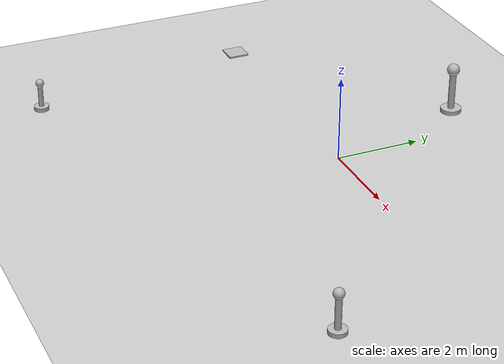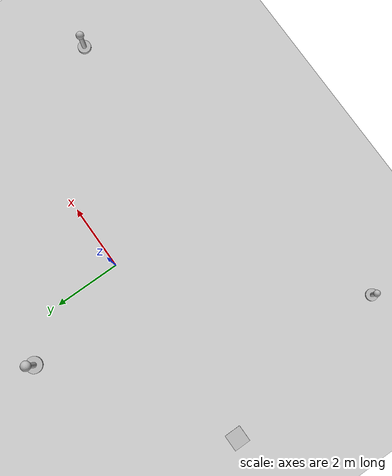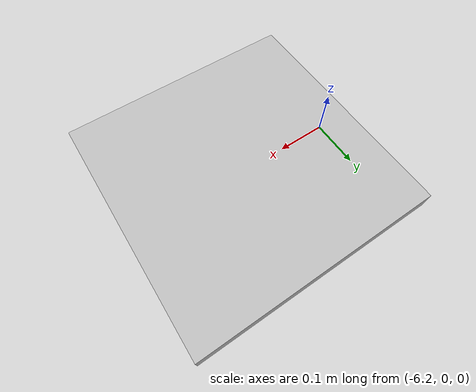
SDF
<?xml version="1.0"?>
<sdf version="1.6">
  <world name="thermal_nav_scene">

    <!-- ★ Fix-5: 防弹射物理参数 ★ -->
    <physics type="ode">
      <real_time_update_rate>1000</real_time_update_rate>
      <max_step_size>0.001</max_step_size>
      <real_time_factor>1</real_time_factor>
      <ode>
        <solver>
          <type>quick</type>
          <iters>50</iters>
          <sor>1.0</sor>
          <use_dynamic_moi_rescaling>0</use_dynamic_moi_rescaling>
        </solver>
        <constraints>
          <cfm>0.0001</cfm>
          <erp>0.1</erp>
          <contact_max_correcting_vel>2.0</contact_max_correcting_vel>
          <contact_surface_layer>0.005</contact_surface_layer>
        </constraints>
      </ode>
    </physics>

    <include><uri>model://sun</uri></include>
    <include><uri>model://ground_plane</uri></include>

    <scene>
      <ambient>0.4 0.4 0.4 1</ambient>
      <background>0.2 0.2 0.25 1</background>
      <shadows>false</shadows>
    </scene>

    <gui fullscreen="0">
      <camera name="user_camera">
        <pose>0 0 18 0 1.5707 0</pose>
        <view_controller>orbit</view_controller>
      </camera>
    </gui>

    <!-- 热源 0: SA_left(-1,3.5) A=35°C σ=1.1m peak=57°C — 纯视觉，无碰撞 [Config-B] -->
    <model name="heat_source_0">
      <static>true</static>
      <pose>-1.0 3.5 0 0 0 0</pose>
      <link name="link">
        <visual name="pillar">
          <pose>0 0 0.5 0 0 0</pose>
          <geometry><cylinder><radius>0.08</radius><length>1.0</length></cylinder></geometry>
          <material><script>
            <uri>file://media/materials/scripts/gazebo.material</uri>
            <n>Gazebo/Red</n>
          </script></material>
        </visual>
        <visual name="top_sphere">
          <pose>0 0 1.1 0 0 0</pose>
          <geometry><sphere><radius>0.15</radius></sphere></geometry>
          <material><script>
            <uri>file://media/materials/scripts/gazebo.material</uri>
            <n>Gazebo/RedGlow</n>
          </script></material>
        </visual>
        <visual name="base">
          <pose>0 0 0.05 0 0 0</pose>
          <geometry><cylinder><radius>0.25</radius><length>0.1</length></cylinder></geometry>
          <material><script>
            <uri>file://media/materials/scripts/gazebo.material</uri>
            <n>Gazebo/DarkRed</n>
          </script></material>
        </visual>
      </link>
    </model>

    <!-- 热源 1: SB_far(6,-3) A=22°C σ=0.9m peak=44°C — 纯视觉，无碰撞 [Config-B] -->
    <model name="heat_source_1">
      <static>true</static>
      <pose>6.0 -3.0 0 0 0 0</pose>
      <link name="link">
        <visual name="pillar">
          <pose>0 0 0.4 0 0 0</pose>
          <geometry><cylinder><radius>0.07</radius><length>0.8</length></cylinder></geometry>
          <material><script>
            <uri>file://media/materials/scripts/gazebo.material</uri>
            <n>Gazebo/Orange</n>
          </script></material>
        </visual>
        <visual name="top_sphere">
          <pose>0 0 0.9 0 0 0</pose>
          <geometry><sphere><radius>0.12</radius></sphere></geometry>
          <material><script>
            <uri>file://media/materials/scripts/gazebo.material</uri>
            <n>Gazebo/Yellow</n>
          </script></material>
        </visual>
        <visual name="base">
          <pose>0 0 0.05 0 0 0</pose>
          <geometry><cylinder><radius>0.20</radius><length>0.1</length></cylinder></geometry>
          <material><script>
            <uri>file://media/materials/scripts/gazebo.material</uri>
            <n>Gazebo/DarkYellow</n>
          </script></material>
        </visual>
      </link>
    </model>

    <!-- 热源 2: SC_weak(-5,-5.5) A=16°C σ=0.8m peak=38°C — 纯视觉，无碰撞 [Config-B] -->
    <model name="heat_source_2">
      <static>true</static>
      <pose>-5.0 -5.5 0 0 0 0</pose>
      <link name="link">
        <visual name="pillar">
          <pose>0 0 0.3 0 0 0</pose>
          <geometry><cylinder><radius>0.06</radius><length>0.6</length></cylinder></geometry>
          <material><script>
            <uri>file://media/materials/scripts/gazebo.material</uri>
            <n>Gazebo/Yellow</n>
          </script></material>
        </visual>
        <visual name="top_sphere">
          <pose>0 0 0.7 0 0 0</pose>
          <geometry><sphere><radius>0.10</radius></sphere></geometry>
          <material><script>
            <uri>file://media/materials/scripts/gazebo.material</uri>
            <n>Gazebo/White</n>
          </script></material>
        </visual>
        <visual name="base">
          <pose>0 0 0.05 0 0 0</pose>
          <geometry><cylinder><radius>0.18</radius><length>0.1</length></cylinder></geometry>
          <material><script>
            <uri>file://media/materials/scripts/gazebo.material</uri>
            <n>Gazebo/Grey</n>
          </script></material>
        </visual>
      </link>
    </model>

    <!-- 起始区域标记 (-6,0) — 纯视觉 -->
    <model name="robot_start_marker">
      <static>true</static>
      <pose>-6.0 0 0 0 0 0</pose>
      <link name="link">
        <visual name="pad">
          <pose>0 0 0.02 0 0 0</pose>
          <geometry><box><size>0.5 0.5 0.04</size></box></geometry>
          <material><script>
            <uri>file://media/materials/scripts/gazebo.material</uri>
            <n>Gazebo/Green</n>
          </script></material>
        </visual>
      </link>
    </model>

  </world>
</sdf>
